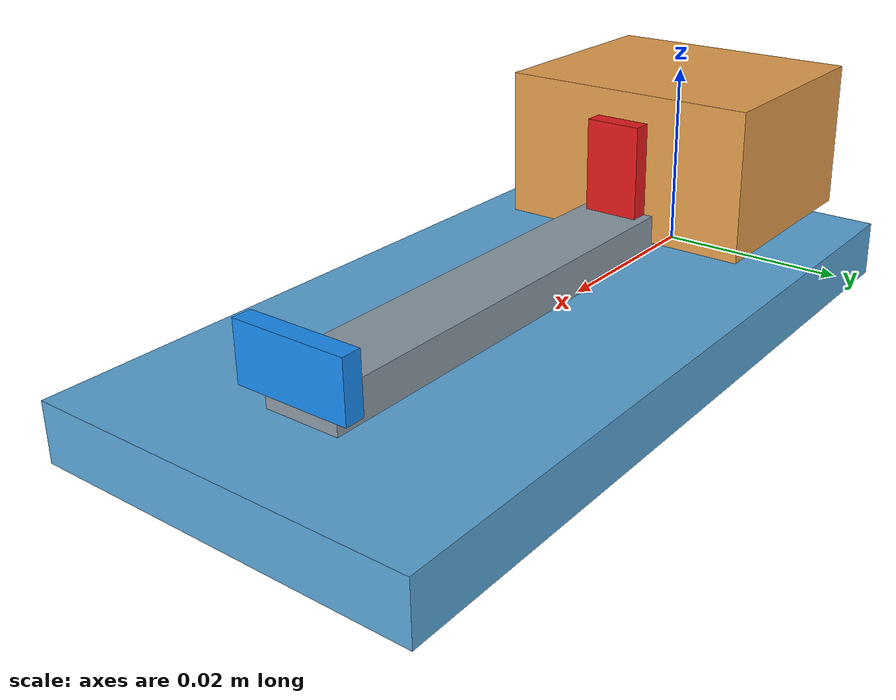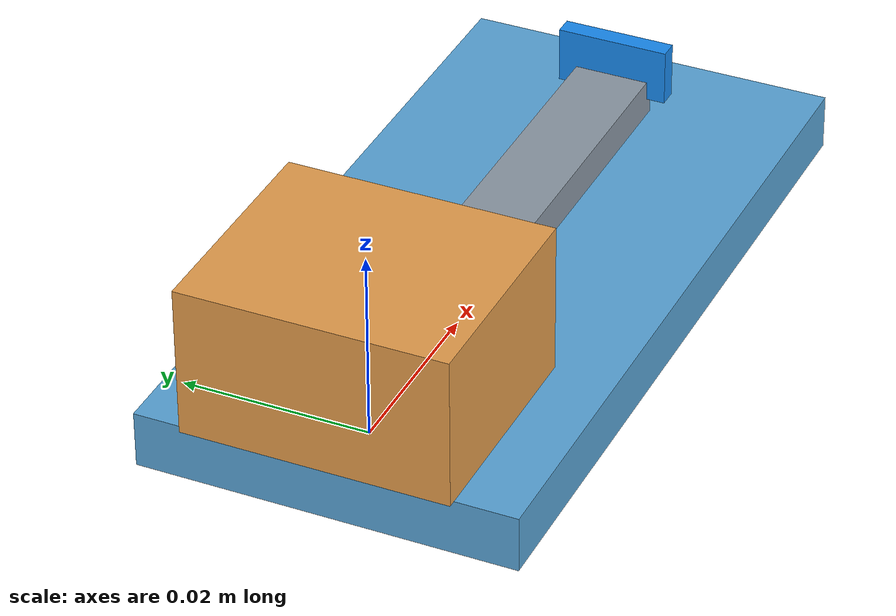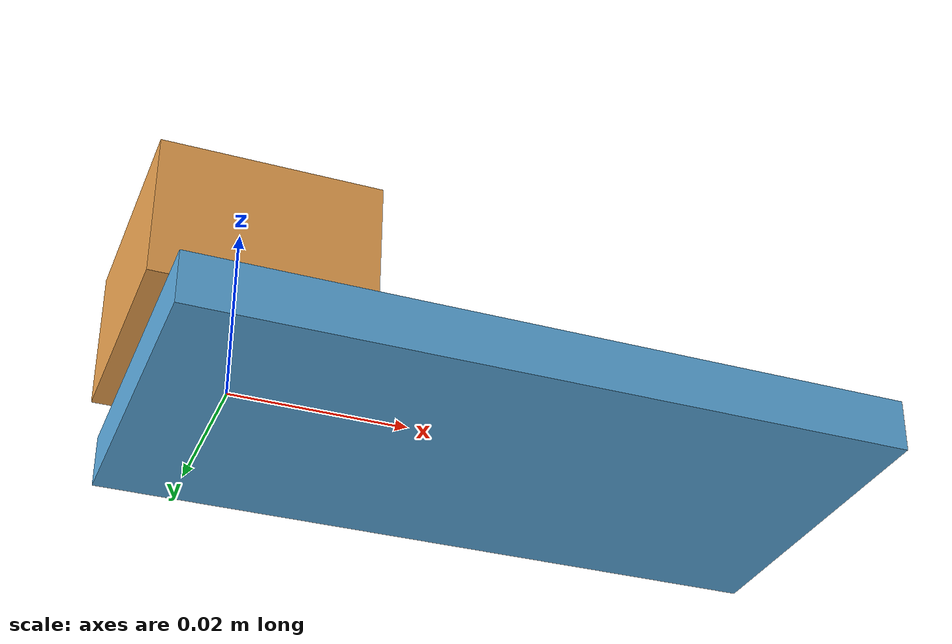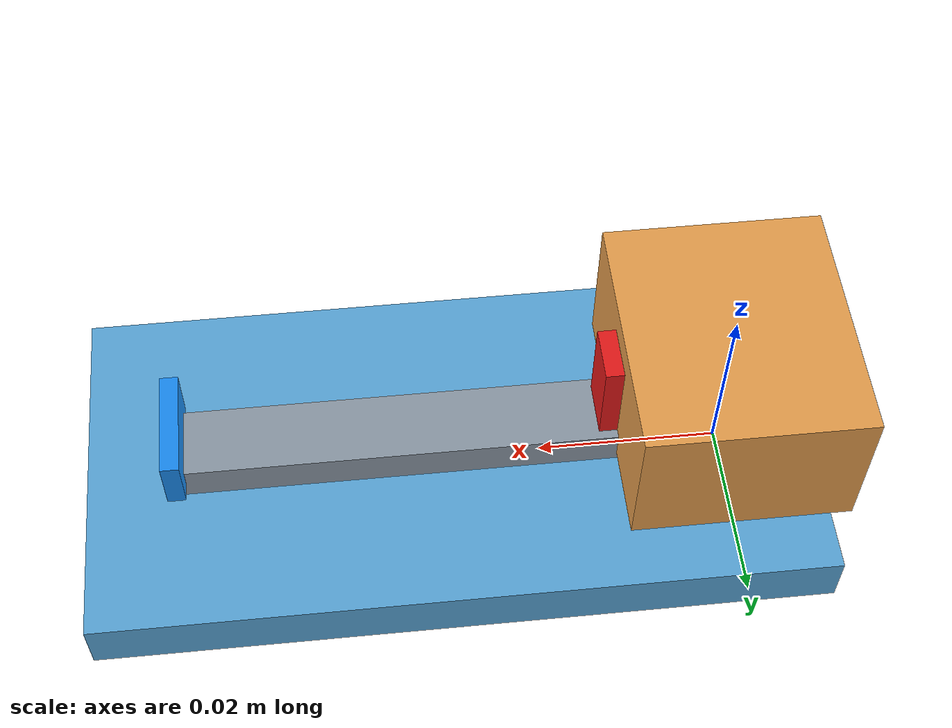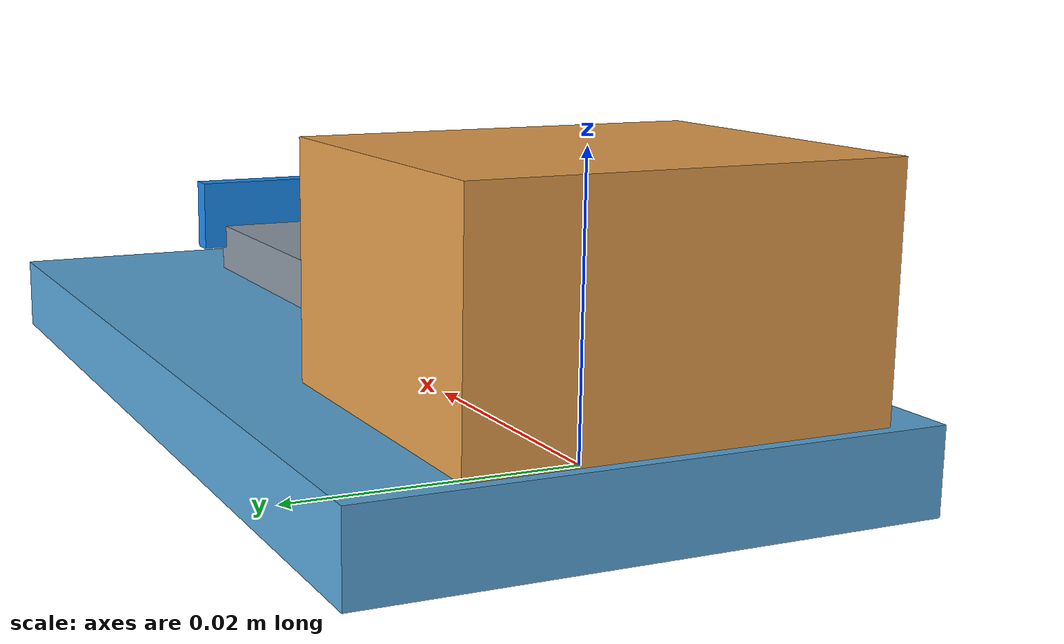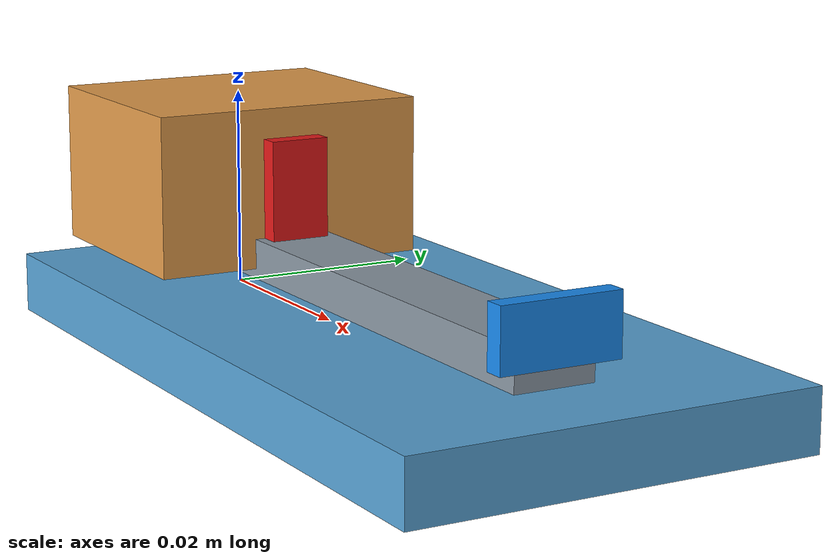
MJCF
<?xml version="1.0" ?>
<mujoco model="t2_latched_drawer">
  <option timestep="0.0001" integrator="implicitfast" gravity="0 0 0"/>
  <visual>
    <headlight ambient="0.5 0.5 0.5" diffuse="0.6 0.6 0.6" specular="0.2 0.2 0.2"/>
    <global offwidth="1280" offheight="960"/>
  </visual>
  <default>
    <geom density="0" contype="0" conaffinity="0" group="2"/>
  </default>
  <asset>
    <material name="frame" rgba="0.35 0.65 0.85 1"/>
    <material name="rail" rgba="0.55 0.6 0.65 1"/>
    <material name="drawer" rgba="0.90 0.62 0.30 1"/>
    <material name="mk" rgba="0.90 0.10 0.10 1"/>
    <material name="mkrail" rgba="0.10 0.55 0.95 1"/>
  </asset>
  <worldbody>
    <light pos="0.05 -0.2 0.3" dir="-0.1 0.3 -1" directional="true" diffuse="0.5 0.5 0.5"/>
    <camera name="side" pos="0.03 -0.16 0.06" xyaxes="1 0 0 0 0.3 0.95"/>
    <geom name="frame" type="box" pos="0.03 0 0" size="0.04 0.02 0.003" material="frame"/>
    <geom name="rail" type="box" pos="0.03 0 0.005" size="0.03 0.004 0.002" material="rail"/>
    <geom name="mk_railend" type="box" pos="0.06 0 0.008" size="0.001 0.006 0.003" material="mkrail"/>
    <body name="drawer" pos="0 0 0.012">
      <joint name="drawer_slide" type="slide" axis="1 0 0" pos="0 0 0" limited="true" range="0 0.060000" damping="0.05" solreflimit="0.002 1" solimplimit="0.99 0.9999 1e-5 0.5 2"/>
      <geom name="drawer_body" type="box" pos="0 0 0" size="0.012 0.014 0.008" material="drawer" mass="0.05"/>
      <geom name="mk_drawer" type="box" pos="0.013 0 0" size="0.001 0.003 0.005" material="mk"/>
    </body>
  </worldbody>
  <actuator>
    <velocity name="pull" joint="drawer_slide" kv="25.0"/>
  </actuator>
</mujoco>
